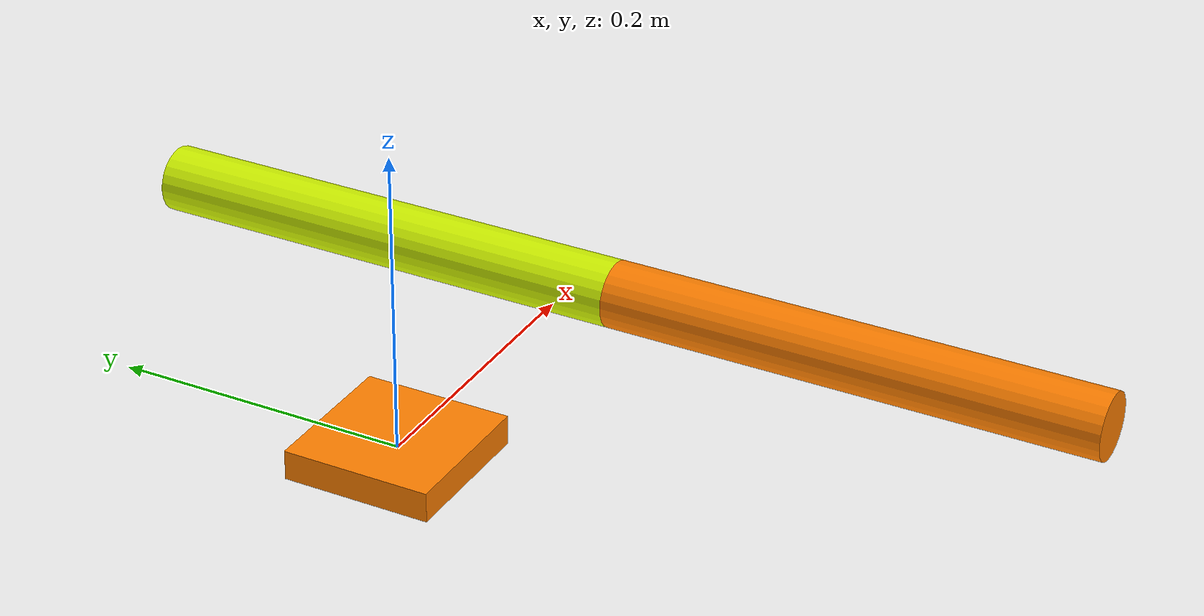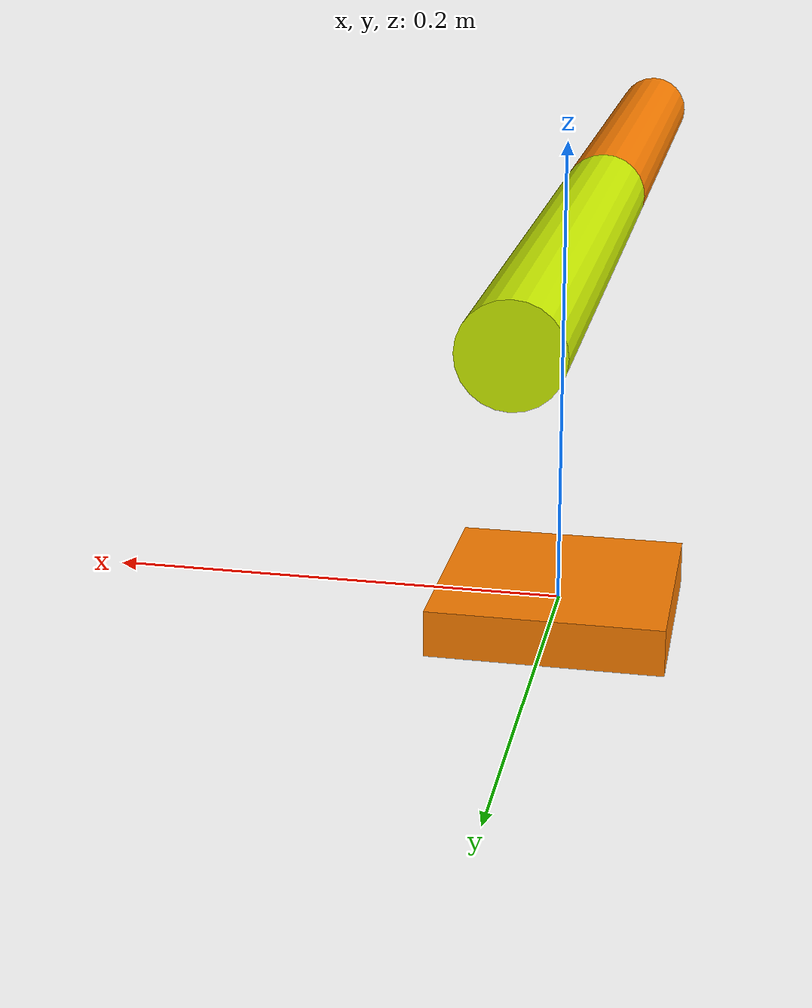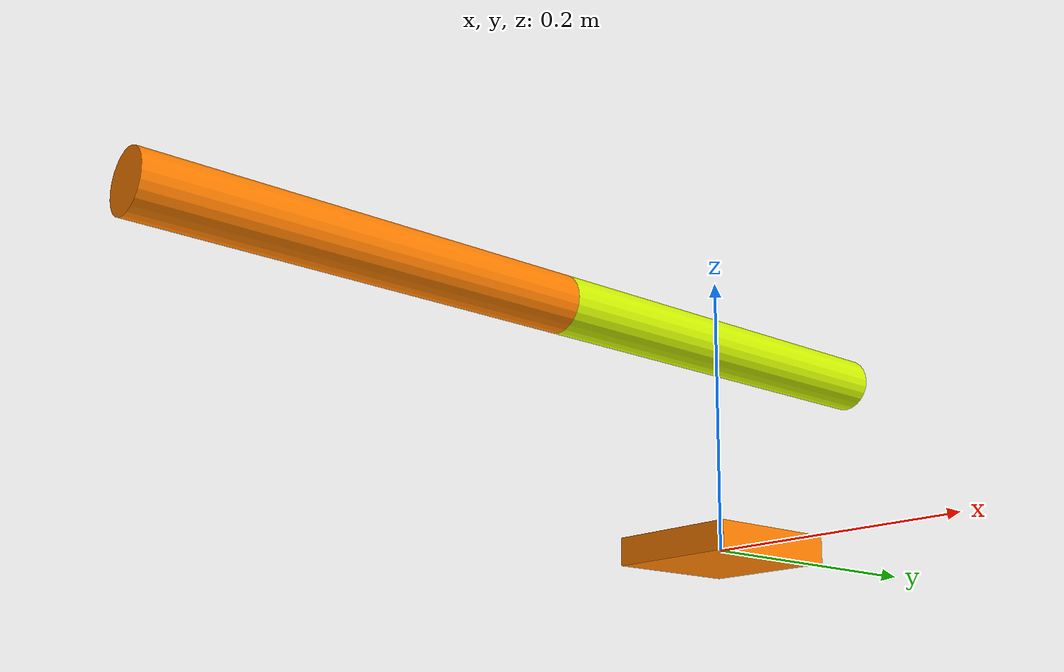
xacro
<?xml version="1.0"?>
<robot xmlns:xacro="http://www.ros.org/wiki/xacro">

    <material name = "yellow">
        <color rgba="0.82 0.96 0 1"/>
    </material>

    <material name = "orange">
        <color rgba="1 0.5 0 1"/>
    </material>

    <link name="base_footprint" />

    <link name="arm_base_link">
        <visual>
            <geometry>
                <box size = "0.1 0.1 0.02" />
            </geometry>
            <origin xyz = "0 0 0" rpy = "0 0 0"/>
            <material name = "orange" />
            <!-- collision-->
             <!-- Inertia-->
        </visual>
    </link>

    <link name = "forearm_link">
        <visual>
            <geometry>
                <cylinder radius="0.02" length="0.3" />
            </geometry>
            <origin xyz = "0 0 0" rpy = "0 0 0"></origin>
            <material name = "yellow" />
        </visual>
    </link>

    <link name = "hand_link">
        <visual>
            <geometry>
                <cylinder radius="0.02" length="0.3" />
            </geometry>
            <origin xyz = "0 0 0" rpy = "0 0 0"></origin>
            <material name = "orange" />
        </visual>
    </link>

    <joint name = "base_joint" type = "fixed" >
        <parent link="base_footprint" />
        <child link="arm_base_link" />
        <origin xyz="0 0 0" rpy="0 0 0"/>
    </joint>

    <joint name = "armbase_forearm_joint" type = "revolute">
        <parent link = "arm_base_link" />
        <child link = "forearm_link" />
        <origin xyz = "0 0 0.15" rpy = "0 0 0" />
        <limit lower = "${pi/2.0}" upper = "${pi/2.0}" effort = "100" velocity = "100" />
    </joint>

    <joint name = "forearm_hand_joint" type = "revolute">
        <parent link="forearm_link"/>
        <child link="hand_link"/>
        <origin xyz = "0 0 0.3" rpy = "0 0 0" />
        <limit lower = "${-pi/2.0}" upper = "${pi/2.0}" effort = "100" velocity = "100"  />
        <axis xyz = "1 0 0" />
    </joint>

</robot>
